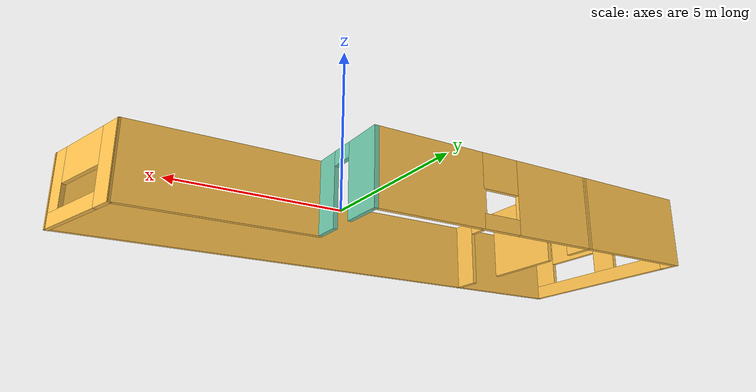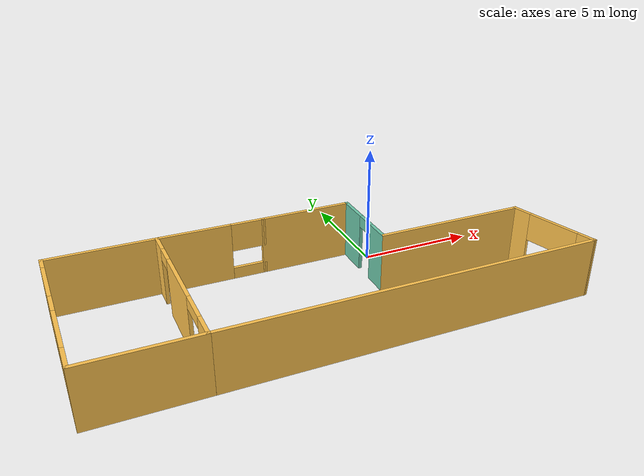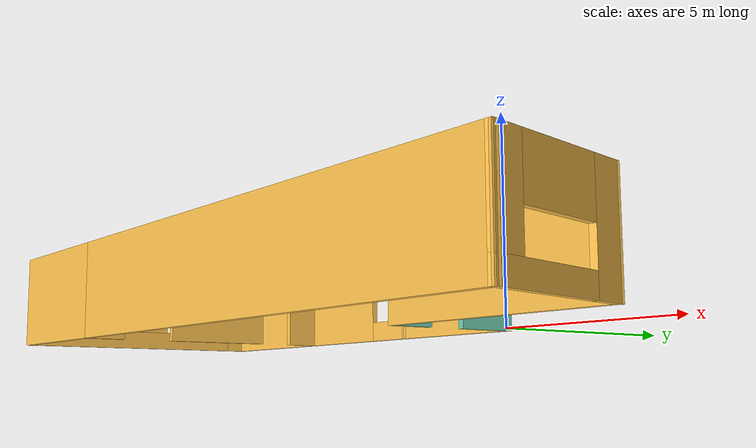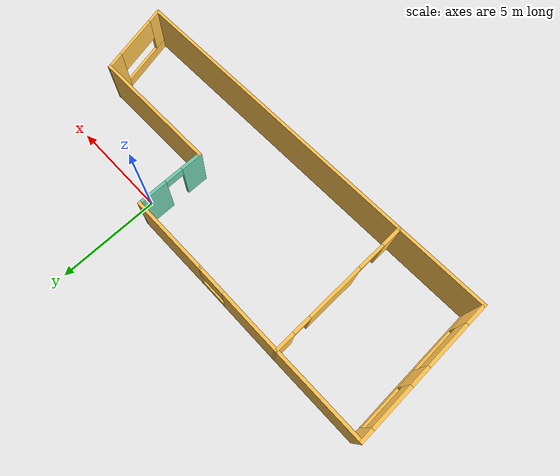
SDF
<?xml version='1.0'?>
<sdf version='1.6'>
  <model name='simLab'>
    <pose frame=''>-3.319 -2.84094 0 0 -0 0</pose>
    <link name='Wall_0'>
      <collision name='Wall_0_Collision'>
        <geometry>
          <box>
            <size>4 0.15 2.5</size>
          </box>
        </geometry>
        <pose frame=''>0 0 1.25 0 -0 0</pose>
      </collision>
      <visual name='Wall_0_Visual'>
        <pose frame=''>0 0 1.25 0 -0 0</pose>
        <geometry>
          <box>
            <size>4 0.15 2.5</size>
          </box>
        </geometry>
        <material>
          <script>
            <uri>file://media/materials/scripts/gazebo.material</uri>
            <name>Gazebo/Grey</name>
          </script>
          <ambient>1 0.764706 0.305882 1</ambient>
        </material>
      </visual>
      <pose frame=''>0.695119 3.52698 0 0 -0 0</pose>
    </link>
    <link name='Wall_1'>
      <pose frame=''>2.62012 1.85198 0 0 0 -1.5708</pose>
      <visual name='Wall_1_Visual_0'>
        <pose frame=''>-1.00222 0 1.25 0 -0 0</pose>
        <geometry>
          <box>
            <size>1.49556 0.15 2.5</size>
          </box>
        </geometry>
        <material>
          <script>
            <uri>file://media/materials/scripts/gazebo.material</uri>
            <name>Gazebo/Grey</name>
          </script>
          <ambient>0.435294 0.796078 0.67451 1</ambient>
        </material>
      </visual>
      <collision name='Wall_1_Collision_0'>
        <geometry>
          <box>
            <size>1.49556 0.15 2.5</size>
          </box>
        </geometry>
        <pose frame=''>-1.00222 0 1.25 0 -0 0</pose>
      </collision>
      <visual name='Wall_1_Visual_1'>
        <pose frame=''>1.19778 0 1.25 0 -0 0</pose>
        <geometry>
          <box>
            <size>1.10444 0.15 2.5</size>
          </box>
        </geometry>
        <material>
          <script>
            <uri>file://media/materials/scripts/gazebo.material</uri>
            <name>Gazebo/Grey</name>
          </script>
          <ambient>0.435294 0.796078 0.67451 1</ambient>
        </material>
      </visual>
      <collision name='Wall_1_Collision_1'>
        <geometry>
          <box>
            <size>1.10444 0.15 2.5</size>
          </box>
        </geometry>
        <pose frame=''>1.19778 0 1.25 0 -0 0</pose>
      </collision>
      <visual name='Wall_1_Visual_2'>
        <pose frame=''>0.195562 0 2.25 0 -0 0</pose>
        <geometry>
          <box>
            <size>0.9 0.15 0.5</size>
          </box>
        </geometry>
        <material>
          <script>
            <uri>file://media/materials/scripts/gazebo.material</uri>
            <name>Gazebo/Grey</name>
          </script>
          <ambient>0.435294 0.796078 0.67451 1</ambient>
        </material>
      </visual>
      <collision name='Wall_1_Collision_2'>
        <geometry>
          <box>
            <size>0.9 0.15 0.5</size>
          </box>
        </geometry>
        <pose frame=''>0.195562 0 2.25 0 -0 0</pose>
      </collision>
    </link>
    <link name='Wall_10'>
      <collision name='Wall_10_Collision'>
        <geometry>
          <box>
            <size>4.5 0.15 2.5</size>
          </box>
        </geometry>
        <pose frame=''>0 0 1.25 0 -0 0</pose>
      </collision>
      <visual name='Wall_10_Visual'>
        <pose frame=''>0 0 1.25 0 -0 0</pose>
        <geometry>
          <box>
            <size>4.5 0.15 2.5</size>
          </box>
        </geometry>
        <material>
          <script>
            <uri>file://media/materials/scripts/gazebo.material</uri>
            <name>Gazebo/Grey</name>
          </script>
          <ambient>1 0.764706 0.305882 1</ambient>
        </material>
      </visual>
      <pose frame=''>-7.80843 -3.54184 0 0 -0 0</pose>
    </link>
    <link name='Wall_2'>
      <collision name='Wall_2_Collision'>
        <geometry>
          <box>
            <size>6.5 0.15 2.5</size>
          </box>
        </geometry>
        <pose frame=''>0 0 1.25 0 -0 0</pose>
      </collision>
      <visual name='Wall_2_Visual'>
        <pose frame=''>0 0 1.25 0 -0 0</pose>
        <geometry>
          <box>
            <size>6.5 0.15 2.5</size>
          </box>
        </geometry>
        <material>
          <script>
            <uri>file://media/materials/scripts/gazebo.material</uri>
            <name>Gazebo/Grey</name>
          </script>
          <ambient>1 0.764706 0.305882 1</ambient>
        </material>
      </visual>
      <pose frame=''>5.79512 0.176978 0 0 -0 0</pose>
    </link>
    <link name='Wall_3'>
      <pose frame=''>9.46835 -1.68243 0 0 0 -1.309</pose>
      <visual name='Wall_3_Visual_0'>
        <pose frame=''>-1.551 0 1.25 0 -0 0</pose>
        <geometry>
          <box>
            <size>0.897996 0.15 2.5</size>
          </box>
        </geometry>
        <material>
          <script>
            <uri>file://media/materials/scripts/gazebo.material</uri>
            <name>Gazebo/Grey</name>
          </script>
          <ambient>1 0.764706 0.305882 1</ambient>
        </material>
      </visual>
      <collision name='Wall_3_Collision_0'>
        <geometry>
          <box>
            <size>0.897996 0.15 2.5</size>
          </box>
        </geometry>
        <pose frame=''>-1.551 0 1.25 0 -0 0</pose>
      </collision>
      <visual name='Wall_3_Visual_1'>
        <pose frame=''>0.448998 0 0.25 0 -0 0</pose>
        <geometry>
          <box>
            <size>3.102 0.15 0.5</size>
          </box>
        </geometry>
        <material>
          <script>
            <uri>file://media/materials/scripts/gazebo.material</uri>
            <name>Gazebo/Grey</name>
          </script>
          <ambient>1 0.764706 0.305882 1</ambient>
        </material>
      </visual>
      <collision name='Wall_3_Collision_1'>
        <geometry>
          <box>
            <size>3.102 0.15 0.5</size>
          </box>
        </geometry>
        <pose frame=''>0.448998 0 0.25 0 -0 0</pose>
      </collision>
      <visual name='Wall_3_Visual_2'>
        <pose frame=''>1.59736 0 1.5 0 -0 0</pose>
        <geometry>
          <box>
            <size>0.805283 0.15 2</size>
          </box>
        </geometry>
        <material>
          <script>
            <uri>file://media/materials/scripts/gazebo.material</uri>
            <name>Gazebo/Grey</name>
          </script>
          <ambient>1 0.764706 0.305882 1</ambient>
        </material>
      </visual>
      <collision name='Wall_3_Collision_2'>
        <geometry>
          <box>
            <size>0.805283 0.15 2</size>
          </box>
        </geometry>
        <pose frame=''>1.59736 0 1.5 0 -0 0</pose>
      </collision>
      <visual name='Wall_3_Visual_3'>
        <pose frame=''>0.046357 0 1.9 0 -0 0</pose>
        <geometry>
          <box>
            <size>2.29672 0.15 1.2</size>
          </box>
        </geometry>
        <material>
          <script>
            <uri>file://media/materials/scripts/gazebo.material</uri>
            <name>Gazebo/Grey</name>
          </script>
          <ambient>1 0.764706 0.305882 1</ambient>
        </material>
      </visual>
      <collision name='Wall_3_Collision_3'>
        <geometry>
          <box>
            <size>2.29672 0.15 1.2</size>
          </box>
        </geometry>
        <pose frame=''>0.046357 0 1.9 0 -0 0</pose>
      </collision>
    </link>
    <link name='Wall_4'>
      <collision name='Wall_4_Collision'>
        <geometry>
          <box>
            <size>15.75 0.15 2.5</size>
          </box>
        </geometry>
        <pose frame=''>0 0 1.25 0 -0 0</pose>
      </collision>
      <visual name='Wall_4_Visual'>
        <pose frame=''>0 0 1.25 0 -0 0</pose>
        <geometry>
          <box>
            <size>15.75 0.15 2.5</size>
          </box>
        </geometry>
        <material>
          <script>
            <uri>file://media/materials/scripts/gazebo.material</uri>
            <name>Gazebo/Grey</name>
          </script>
          <ambient>1 0.764706 0.305882 1</ambient>
        </material>
      </visual>
      <pose frame=''>2.16657 -3.54184 0 0 -0 3.14159</pose>
    </link>
    <link name='Wall_5'>
      <pose frame=''>-5.63343 0.008163 0 0 -0 1.5708</pose>
      <visual name='Wall_5_Visual_0'>
        <pose frame=''>-3.06885 0 1.25 0 -0 0</pose>
        <geometry>
          <box>
            <size>1.1123 0.15 2.5</size>
          </box>
        </geometry>
        <material>
          <script>
            <uri>file://media/materials/scripts/gazebo.material</uri>
            <name>Gazebo/Grey</name>
          </script>
          <ambient>1 0.764706 0.305882 1</ambient>
        </material>
      </visual>
      <collision name='Wall_5_Collision_0'>
        <geometry>
          <box>
            <size>1.1123 0.15 2.5</size>
          </box>
        </geometry>
        <pose frame=''>-3.06885 0 1.25 0 -0 0</pose>
      </collision>
      <visual name='Wall_5_Visual_1'>
        <pose frame=''>0.295614 0 1.25 0 -0 0</pose>
        <geometry>
          <box>
            <size>2.85118 0.15 2.5</size>
          </box>
        </geometry>
        <material>
          <script>
            <uri>file://media/materials/scripts/gazebo.material</uri>
            <name>Gazebo/Grey</name>
          </script>
          <ambient>1 0.764706 0.305882 1</ambient>
        </material>
      </visual>
      <collision name='Wall_5_Collision_1'>
        <geometry>
          <box>
            <size>2.85118 0.15 2.5</size>
          </box>
        </geometry>
        <pose frame=''>0.295614 0 1.25 0 -0 0</pose>
      </collision>
      <visual name='Wall_5_Visual_2'>
        <pose frame=''>3.1231 0 1.25 0 -0 0</pose>
        <geometry>
          <box>
            <size>1.00379 0.15 2.5</size>
          </box>
        </geometry>
        <material>
          <script>
            <uri>file://media/materials/scripts/gazebo.material</uri>
            <name>Gazebo/Grey</name>
          </script>
          <ambient>1 0.764706 0.305882 1</ambient>
        </material>
      </visual>
      <collision name='Wall_5_Collision_2'>
        <geometry>
          <box>
            <size>1.00379 0.15 2.5</size>
          </box>
        </geometry>
        <pose frame=''>3.1231 0 1.25 0 -0 0</pose>
      </collision>
      <visual name='Wall_5_Visual_3'>
        <pose frame=''>-1.82134 0 2.25 0 -0 0</pose>
        <geometry>
          <box>
            <size>1.38273 0.15 0.5</size>
          </box>
        </geometry>
        <material>
          <script>
            <uri>file://media/materials/scripts/gazebo.material</uri>
            <name>Gazebo/Grey</name>
          </script>
          <ambient>1 0.764706 0.305882 1</ambient>
        </material>
      </visual>
      <collision name='Wall_5_Collision_3'>
        <geometry>
          <box>
            <size>1.38273 0.15 0.5</size>
          </box>
        </geometry>
        <pose frame=''>-1.82134 0 2.25 0 -0 0</pose>
      </collision>
      <visual name='Wall_5_Visual_4'>
        <pose frame=''>2.17121 0 2.25 0 -0 0</pose>
        <geometry>
          <box>
            <size>0.9 0.15 0.5</size>
          </box>
        </geometry>
        <material>
          <script>
            <uri>file://media/materials/scripts/gazebo.material</uri>
            <name>Gazebo/Grey</name>
          </script>
          <ambient>1 0.764706 0.305882 1</ambient>
        </material>
      </visual>
      <collision name='Wall_5_Collision_4'>
        <geometry>
          <box>
            <size>0.9 0.15 0.5</size>
          </box>
        </geometry>
        <pose frame=''>2.17121 0 2.25 0 -0 0</pose>
      </collision>
    </link>
    <link name='Wall_6'>
      <pose frame=''>-3.43165 3.54257 0 0 0 -0.007082</pose>
      <visual name='Wall_6_Visual_0'>
        <pose frame=''>-0.729772 0 1.25 0 -0 0</pose>
        <geometry>
          <box>
            <size>3.09411 0.15 2.5</size>
          </box>
        </geometry>
        <material>
          <script>
            <uri>file://media/materials/scripts/gazebo.material</uri>
            <name>Gazebo/Grey</name>
          </script>
          <ambient>1 0.764706 0.305882 1</ambient>
        </material>
      </visual>
      <collision name='Wall_6_Collision_0'>
        <geometry>
          <box>
            <size>3.09411 0.15 2.5</size>
          </box>
        </geometry>
        <pose frame=''>-0.729772 0 1.25 0 -0 0</pose>
      </collision>
      <visual name='Wall_6_Visual_1'>
        <pose frame=''>1.54706 0 0.25 0 -0 0</pose>
        <geometry>
          <box>
            <size>1.45954 0.15 0.5</size>
          </box>
        </geometry>
        <material>
          <script>
            <uri>file://media/materials/scripts/gazebo.material</uri>
            <name>Gazebo/Grey</name>
          </script>
          <ambient>1 0.764706 0.305882 1</ambient>
        </material>
      </visual>
      <collision name='Wall_6_Collision_1'>
        <geometry>
          <box>
            <size>1.45954 0.15 0.5</size>
          </box>
        </geometry>
        <pose frame=''>1.54706 0 0.25 0 -0 0</pose>
      </collision>
      <visual name='Wall_6_Visual_2'>
        <pose frame=''>1.54706 0 1.9 0 -0 0</pose>
        <geometry>
          <box>
            <size>1.45954 0.15 1.2</size>
          </box>
        </geometry>
        <material>
          <script>
            <uri>file://media/materials/scripts/gazebo.material</uri>
            <name>Gazebo/Grey</name>
          </script>
          <ambient>1 0.764706 0.305882 1</ambient>
        </material>
      </visual>
      <collision name='Wall_6_Collision_2'>
        <geometry>
          <box>
            <size>1.45954 0.15 1.2</size>
          </box>
        </geometry>
        <pose frame=''>1.54706 0 1.9 0 -0 0</pose>
      </collision>
    </link>
    <link name='Wall_8'>
      <collision name='Wall_8_Collision'>
        <geometry>
          <box>
            <size>4.5 0.15 2.5</size>
          </box>
        </geometry>
        <pose frame=''>0 0 1.25 0 -0 0</pose>
      </collision>
      <visual name='Wall_8_Visual'>
        <pose frame=''>0 0 1.25 0 -0 0</pose>
        <geometry>
          <box>
            <size>4.5 0.15 2.5</size>
          </box>
        </geometry>
        <material>
          <script>
            <uri>file://media/materials/scripts/gazebo.material</uri>
            <name>Gazebo/Grey</name>
          </script>
          <ambient>1 0.764706 0.305882 1</ambient>
        </material>
      </visual>
      <pose frame=''>-7.80843 3.55816 0 0 -0 3.14159</pose>
    </link>
    <link name='Wall_9'>
      <pose frame=''>-9.98343 0.008163 0 0 0 -1.5708</pose>
      <visual name='Wall_9_Visual_0'>
        <pose frame=''>-3.28918 0 1.25 0 -0 0</pose>
        <geometry>
          <box>
            <size>0.671637 0.15 2.5</size>
          </box>
        </geometry>
        <material>
          <script>
            <uri>file://media/materials/scripts/gazebo.material</uri>
            <name>Gazebo/Grey</name>
          </script>
          <ambient>1 0.764706 0.305882 1</ambient>
        </material>
      </visual>
      <collision name='Wall_9_Collision_0'>
        <geometry>
          <box>
            <size>0.671637 0.15 2.5</size>
          </box>
        </geometry>
        <pose frame=''>-3.28918 0 1.25 0 -0 0</pose>
      </collision>
      <visual name='Wall_9_Visual_1'>
        <pose frame=''>0.335819 0 0.25 0 -0 0</pose>
        <geometry>
          <box>
            <size>6.57836 0.15 0.5</size>
          </box>
        </geometry>
        <material>
          <script>
            <uri>file://media/materials/scripts/gazebo.material</uri>
            <name>Gazebo/Grey</name>
          </script>
          <ambient>1 0.764706 0.305882 1</ambient>
        </material>
      </visual>
      <collision name='Wall_9_Collision_1'>
        <geometry>
          <box>
            <size>6.57836 0.15 0.5</size>
          </box>
        </geometry>
        <pose frame=''>0.335819 0 0.25 0 -0 0</pose>
      </collision>
      <visual name='Wall_9_Visual_2'>
        <pose frame=''>-0.3107 0 1.5 0 -0 0</pose>
        <geometry>
          <box>
            <size>0.990108 0.15 2</size>
          </box>
        </geometry>
        <material>
          <script>
            <uri>file://media/materials/scripts/gazebo.material</uri>
            <name>Gazebo/Grey</name>
          </script>
          <ambient>1 0.764706 0.305882 1</ambient>
        </material>
      </visual>
      <collision name='Wall_9_Collision_2'>
        <geometry>
          <box>
            <size>0.990108 0.15 2</size>
          </box>
        </geometry>
        <pose frame=''>-0.3107 0 1.5 0 -0 0</pose>
      </collision>
      <visual name='Wall_9_Visual_3'>
        <pose frame=''>3.04888 0 1.5 0 -0 0</pose>
        <geometry>
          <box>
            <size>1.15224 0.15 2</size>
          </box>
        </geometry>
        <material>
          <script>
            <uri>file://media/materials/scripts/gazebo.material</uri>
            <name>Gazebo/Grey</name>
          </script>
          <ambient>1 0.764706 0.305882 1</ambient>
        </material>
      </visual>
      <collision name='Wall_9_Collision_3'>
        <geometry>
          <box>
            <size>1.15224 0.15 2</size>
          </box>
        </geometry>
        <pose frame=''>3.04888 0 1.5 0 -0 0</pose>
      </collision>
      <visual name='Wall_9_Visual_4'>
        <pose frame=''>-1.87956 0 1.9 0 -0 0</pose>
        <geometry>
          <box>
            <size>2.14761 0.15 1.2</size>
          </box>
        </geometry>
        <material>
          <script>
            <uri>file://media/materials/scripts/gazebo.material</uri>
            <name>Gazebo/Grey</name>
          </script>
          <ambient>1 0.764706 0.305882 1</ambient>
        </material>
      </visual>
      <collision name='Wall_9_Collision_4'>
        <geometry>
          <box>
            <size>2.14761 0.15 1.2</size>
          </box>
        </geometry>
        <pose frame=''>-1.87956 0 1.9 0 -0 0</pose>
      </collision>
      <visual name='Wall_9_Visual_5'>
        <pose frame=''>1.32856 0 1.9 0 -0 0</pose>
        <geometry>
          <box>
            <size>2.2884 0.15 1.2</size>
          </box>
        </geometry>
        <material>
          <script>
            <uri>file://media/materials/scripts/gazebo.material</uri>
            <name>Gazebo/Grey</name>
          </script>
          <ambient>1 0.764706 0.305882 1</ambient>
        </material>
      </visual>
      <collision name='Wall_9_Collision_5'>
        <geometry>
          <box>
            <size>2.2884 0.15 1.2</size>
          </box>
        </geometry>
        <pose frame=''>1.32856 0 1.9 0 -0 0</pose>
      </collision>
    </link>
    <static>1</static>
  </model>
</sdf>
